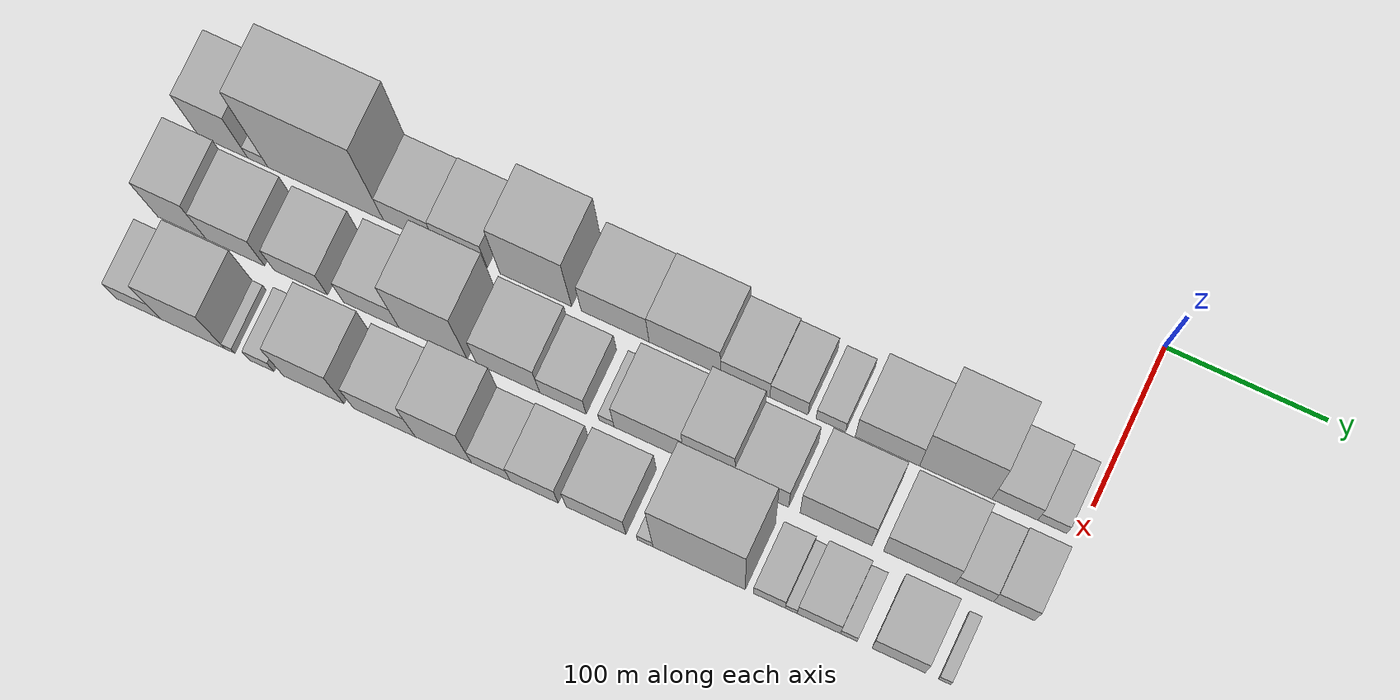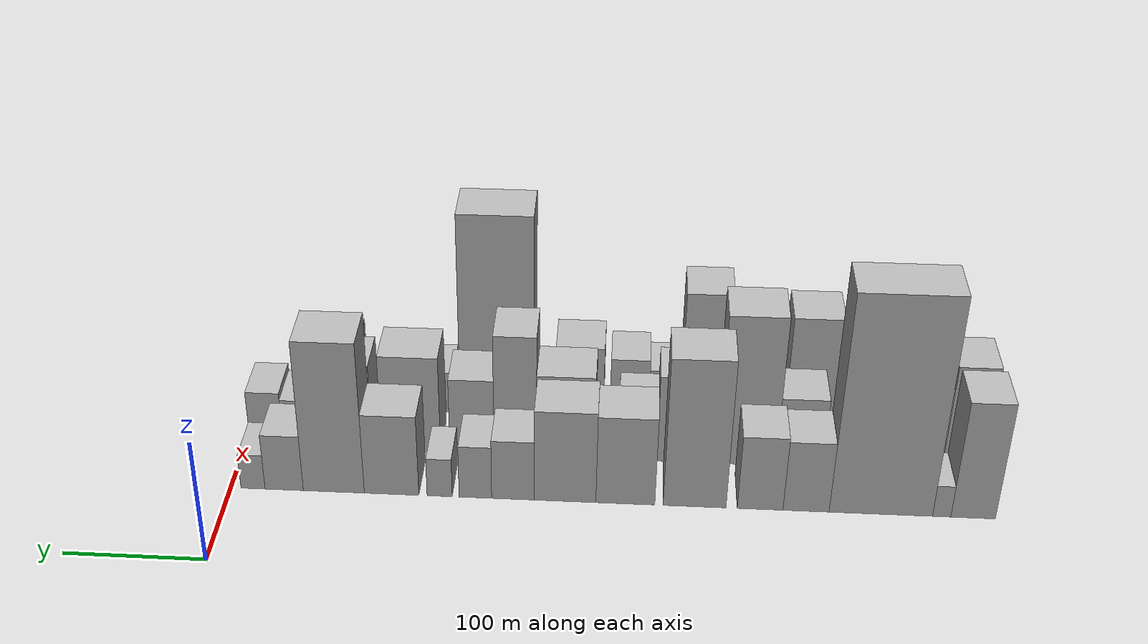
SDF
<sdf version="1.6">
 <world name="default">
  <model name="building_1">
   <static>1</static>
   <pose>100.0000 -532.3736 0 0.000000 0.000000 0.000000</pose>
   <link name="link">
    <pose>0 0 49.50 0 0 0</pose>
    <collision name="collision"><geometry><box><size>40.0000 31.2527 99.0000</size></box></geometry></collision>
    <visual name="visual">
     <cast_shadows>0</cast_shadows>
     <geometry><box><size>40.0000 31.2527 99.0000</size></box></geometry>
     <material>
      <script>
       <uri>model://HANNAS_wall/materials/scripts</uri>
       <uri>model://HANNAS_wall/materials/textures</uri>
       <name>vrc/HANNAS_wall</name>
      </script>
     </material>
    </visual>
   </link>
  </model>
  <model name="building_2">
   <static>1</static>
   <pose>100.0000 -510.3500 0 0.000000 0.000000 0.000000</pose>
   <link name="link">
    <pose>0 0 13.50 0 0 0</pose>
    <collision name="collision"><geometry><box><size>40.0000 12.7945 27.0000</size></box></geometry></collision>
    <visual name="visual">
     <cast_shadows>0</cast_shadows>
     <geometry><box><size>40.0000 12.7945 27.0000</size></box></geometry>
     <material>
      <script>
       <uri>model://HANNAS_wall/materials/scripts</uri>
       <uri>model://HANNAS_wall/materials/textures</uri>
       <name>vrc/HANNAS_wall</name>
      </script>
     </material>
    </visual>
   </link>
  </model>
  <model name="building_3">
   <static>1</static>
   <pose>100.0000 -467.4651 0 0.000000 0.000000 0.000000</pose>
   <link name="link">
    <pose>0 0 91.50 0 0 0</pose>
    <collision name="collision"><geometry><box><size>40.0000 72.9752 183.0000</size></box></geometry></collision>
    <visual name="visual">
     <cast_shadows>0</cast_shadows>
     <geometry><box><size>40.0000 72.9752 183.0000</size></box></geometry>
     <material>
      <script>
       <uri>model://HANNAS_wall/materials/scripts</uri>
       <uri>model://HANNAS_wall/materials/textures</uri>
       <name>vrc/HANNAS_wall</name>
      </script>
     </material>
    </visual>
   </link>
  </model>
  <model name="building_4">
   <static>1</static>
   <pose>100.0000 -414.6393 0 0.000000 0.000000 0.000000</pose>
   <link name="link">
    <pose>0 0 30.00 0 0 0</pose>
    <collision name="collision"><geometry><box><size>40.0000 32.6765 60.0000</size></box></geometry></collision>
    <visual name="visual">
     <cast_shadows>0</cast_shadows>
     <geometry><box><size>40.0000 32.6765 60.0000</size></box></geometry>
     <material>
      <script>
       <uri>model://HANNAS_wall/materials/scripts</uri>
       <uri>model://HANNAS_wall/materials/textures</uri>
       <name>vrc/HANNAS_wall</name>
      </script>
     </material>
    </visual>
   </link>
  </model>
  <model name="building_5">
   <static>1</static>
   <pose>100.0000 -382.0855 0 0.000000 0.000000 0.000000</pose>
   <link name="link">
    <pose>0 0 31.50 0 0 0</pose>
    <collision name="collision"><geometry><box><size>40.0000 32.4310 63.0000</size></box></geometry></collision>
    <visual name="visual">
     <cast_shadows>0</cast_shadows>
     <geometry><box><size>40.0000 32.4310 63.0000</size></box></geometry>
     <material>
      <script>
       <uri>model://HANNAS_wall/materials/scripts</uri>
       <uri>model://HANNAS_wall/materials/textures</uri>
       <name>vrc/HANNAS_wall</name>
      </script>
     </material>
    </visual>
   </link>
  </model>
  <model name="building_6">
   <static>1</static>
   <pose>100.0000 -335.4556 0 0.000000 0.000000 0.000000</pose>
   <link name="link">
    <pose>0 0 63.00 0 0 0</pose>
    <collision name="collision"><geometry><box><size>40.0000 44.8287 126.0000</size></box></geometry></collision>
    <visual name="visual">
     <cast_shadows>0</cast_shadows>
     <geometry><box><size>40.0000 44.8287 126.0000</size></box></geometry>
     <material>
      <script>
       <uri>model://HANNAS_wall/materials/scripts</uri>
       <uri>model://HANNAS_wall/materials/textures</uri>
       <name>vrc/HANNAS_wall</name>
      </script>
     </material>
    </visual>
   </link>
  </model>
  <model name="building_7">
   <static>1</static>
   <pose>100.0000 -285.9318 0 0.000000 0.000000 0.000000</pose>
   <link name="link">
    <pose>0 0 37.50 0 0 0</pose>
    <collision name="collision"><geometry><box><size>40.0000 42.2188 75.0000</size></box></geometry></collision>
    <visual name="visual">
     <cast_shadows>0</cast_shadows>
     <geometry><box><size>40.0000 42.2188 75.0000</size></box></geometry>
     <material>
      <script>
       <uri>model://HANNAS_wall/materials/scripts</uri>
       <uri>model://HANNAS_wall/materials/textures</uri>
       <name>vrc/HANNAS_wall</name>
      </script>
     </material>
    </visual>
   </link>
  </model>
  <model name="building_8">
   <static>1</static>
   <pose>100.0000 -242.5568 0 0.000000 0.000000 0.000000</pose>
   <link name="link">
    <pose>0 0 39.00 0 0 0</pose>
    <collision name="collision"><geometry><box><size>40.0000 44.5313 78.0000</size></box></geometry></collision>
    <visual name="visual">
     <cast_shadows>0</cast_shadows>
     <geometry><box><size>40.0000 44.5313 78.0000</size></box></geometry>
     <material>
      <script>
       <uri>model://HANNAS_wall/materials/scripts</uri>
       <uri>model://HANNAS_wall/materials/textures</uri>
       <name>vrc/HANNAS_wall</name>
      </script>
     </material>
    </visual>
   </link>
  </model>
  <model name="building_9">
   <static>1</static>
   <pose>100.0000 -205.0345 0 0.000000 0.000000 0.000000</pose>
   <link name="link">
    <pose>0 0 25.50 0 0 0</pose>
    <collision name="collision"><geometry><box><size>40.0000 30.5132 51.0000</size></box></geometry></collision>
    <visual name="visual">
     <cast_shadows>0</cast_shadows>
     <geometry><box><size>40.0000 30.5132 51.0000</size></box></geometry>
     <material>
      <script>
       <uri>model://HANNAS_wall/materials/scripts</uri>
       <uri>model://HANNAS_wall/materials/textures</uri>
       <name>vrc/HANNAS_wall</name>
      </script>
     </material>
    </visual>
   </link>
  </model>
  <model name="building_10">
   <static>1</static>
   <pose>100.0000 -178.0144 0 0.000000 0.000000 0.000000</pose>
   <link name="link">
    <pose>0 0 22.50 0 0 0</pose>
    <collision name="collision"><geometry><box><size>40.0000 23.5270 45.0000</size></box></geometry></collision>
    <visual name="visual">
     <cast_shadows>0</cast_shadows>
     <geometry><box><size>40.0000 23.5270 45.0000</size></box></geometry>
     <material>
      <script>
       <uri>model://HANNAS_wall/materials/scripts</uri>
       <uri>model://HANNAS_wall/materials/textures</uri>
       <name>vrc/HANNAS_wall</name>
      </script>
     </material>
    </visual>
   </link>
  </model>
  <model name="building_11">
   <static>1</static>
   <pose>100.0000 -152.1517 0 0.000000 0.000000 0.000000</pose>
   <link name="link">
    <pose>0 0 16.50 0 0 0</pose>
    <collision name="collision"><geometry><box><size>40.0000 18.1985 33.0000</size></box></geometry></collision>
    <visual name="visual">
     <cast_shadows>0</cast_shadows>
     <geometry><box><size>40.0000 18.1985 33.0000</size></box></geometry>
     <material>
      <script>
       <uri>model://HANNAS_wall/materials/scripts</uri>
       <uri>model://HANNAS_wall/materials/textures</uri>
       <name>vrc/HANNAS_wall</name>
      </script>
     </material>
    </visual>
   </link>
  </model>
  <model name="building_12">
   <static>1</static>
   <pose>100.0000 -117.2215 0 0.000000 0.000000 0.000000</pose>
   <link name="link">
    <pose>0 0 34.50 0 0 0</pose>
    <collision name="collision"><geometry><box><size>40.0000 39.6619 69.0000</size></box></geometry></collision>
    <visual name="visual">
     <cast_shadows>0</cast_shadows>
     <geometry><box><size>40.0000 39.6619 69.0000</size></box></geometry>
     <material>
      <script>
       <uri>model://HANNAS_wall/materials/scripts</uri>
       <uri>model://HANNAS_wall/materials/textures</uri>
       <name>vrc/HANNAS_wall</name>
      </script>
     </material>
    </visual>
   </link>
  </model>
  <model name="building_13">
   <static>1</static>
   <pose>100.0000 -75.1150 0 0.000000 0.000000 0.000000</pose>
   <link name="link">
    <pose>0 0 64.50 0 0 0</pose>
    <collision name="collision"><geometry><box><size>40.0000 44.5510 129.0000</size></box></geometry></collision>
    <visual name="visual">
     <cast_shadows>0</cast_shadows>
     <geometry><box><size>40.0000 44.5510 129.0000</size></box></geometry>
     <material>
      <script>
       <uri>model://HANNAS_wall/materials/scripts</uri>
       <uri>model://HANNAS_wall/materials/textures</uri>
       <name>vrc/HANNAS_wall</name>
      </script>
     </material>
    </visual>
   </link>
  </model>
  <model name="building_14">
   <static>1</static>
   <pose>100.0000 -38.8393 0 0.000000 0.000000 0.000000</pose>
   <link name="link">
    <pose>0 0 24.00 0 0 0</pose>
    <collision name="collision"><geometry><box><size>40.0000 28.0004 48.0000</size></box></geometry></collision>
    <visual name="visual">
     <cast_shadows>0</cast_shadows>
     <geometry><box><size>40.0000 28.0004 48.0000</size></box></geometry>
     <material>
      <script>
       <uri>model://HANNAS_wall/materials/scripts</uri>
       <uri>model://HANNAS_wall/materials/textures</uri>
       <name>vrc/HANNAS_wall</name>
      </script>
     </material>
    </visual>
   </link>
  </model>
  <model name="building_15">
   <static>1</static>
   <pose>100.0000 -16.0069 0 0.000000 0.000000 0.000000</pose>
   <link name="link">
    <pose>0 0 15.00 0 0 0</pose>
    <collision name="collision"><geometry><box><size>40.0000 17.6644 30.0000</size></box></geometry></collision>
    <visual name="visual">
     <cast_shadows>0</cast_shadows>
     <geometry><box><size>40.0000 17.6644 30.0000</size></box></geometry>
     <material>
      <script>
       <uri>model://HANNAS_wall/materials/scripts</uri>
       <uri>model://HANNAS_wall/materials/textures</uri>
       <name>vrc/HANNAS_wall</name>
      </script>
     </material>
    </visual>
   </link>
  </model>
  <model name="building_31">
   <static>1</static>
   <pose>152.0000 -532.7235 0 0.000000 0.000000 0.000000</pose>
   <link name="link">
    <pose>0 0 46.50 0 0 0</pose>
    <collision name="collision"><geometry><box><size>40.0000 30.5529 93.0000</size></box></geometry></collision>
    <visual name="visual">
     <cast_shadows>0</cast_shadows>
     <geometry><box><size>40.0000 30.5529 93.0000</size></box></geometry>
     <material>
      <script>
       <uri>model://HANNAS_wall/materials/scripts</uri>
       <uri>model://HANNAS_wall/materials/textures</uri>
       <name>vrc/HANNAS_wall</name>
      </script>
     </material>
    </visual>
   </link>
  </model>
  <model name="building_32">
   <static>1</static>
   <pose>152.0000 -499.0057 0 0.000000 0.000000 0.000000</pose>
   <link name="link">
    <pose>0 0 36.00 0 0 0</pose>
    <collision name="collision"><geometry><box><size>40.0000 36.8827 72.0000</size></box></geometry></collision>
    <visual name="visual">
     <cast_shadows>0</cast_shadows>
     <geometry><box><size>40.0000 36.8827 72.0000</size></box></geometry>
     <material>
      <script>
       <uri>model://HANNAS_wall/materials/scripts</uri>
       <uri>model://HANNAS_wall/materials/textures</uri>
       <name>vrc/HANNAS_wall</name>
      </script>
     </material>
    </visual>
   </link>
  </model>
  <model name="building_33">
   <static>1</static>
   <pose>152.0000 -457.7530 0 0.000000 0.000000 0.000000</pose>
   <link name="link">
    <pose>0 0 30.00 0 0 0</pose>
    <collision name="collision"><geometry><box><size>40.0000 33.6228 60.0000</size></box></geometry></collision>
    <visual name="visual">
     <cast_shadows>0</cast_shadows>
     <geometry><box><size>40.0000 33.6228 60.0000</size></box></geometry>
     <material>
      <script>
       <uri>model://HANNAS_wall/materials/scripts</uri>
       <uri>model://HANNAS_wall/materials/textures</uri>
       <name>vrc/HANNAS_wall</name>
      </script>
     </material>
    </visual>
   </link>
  </model>
  <model name="building_34">
   <static>1</static>
   <pose>152.0000 -413.5753 0 0.000000 0.000000 0.000000</pose>
   <link name="link">
    <pose>0 0 30.00 0 0 0</pose>
    <collision name="collision"><geometry><box><size>40.0000 34.7326 60.0000</size></box></geometry></collision>
    <visual name="visual">
     <cast_shadows>0</cast_shadows>
     <geometry><box><size>40.0000 34.7326 60.0000</size></box></geometry>
     <material>
      <script>
       <uri>model://HANNAS_wall/materials/scripts</uri>
       <uri>model://HANNAS_wall/materials/textures</uri>
       <name>vrc/HANNAS_wall</name>
      </script>
     </material>
    </visual>
   </link>
  </model>
  <model name="building_35">
   <static>1</static>
   <pose>152.0000 -374.9144 0 0.000000 0.000000 0.000000</pose>
   <link name="link">
    <pose>0 0 64.50 0 0 0</pose>
    <collision name="collision"><geometry><box><size>40.0000 42.5892 129.0000</size></box></geometry></collision>
    <visual name="visual">
     <cast_shadows>0</cast_shadows>
     <geometry><box><size>40.0000 42.5892 129.0000</size></box></geometry>
     <material>
      <script>
       <uri>model://HANNAS_wall/materials/scripts</uri>
       <uri>model://HANNAS_wall/materials/textures</uri>
       <name>vrc/HANNAS_wall</name>
      </script>
     </material>
    </visual>
   </link>
  </model>
  <model name="building_36">
   <static>1</static>
   <pose>152.0000 -327.9441 0 0.000000 0.000000 0.000000</pose>
   <link name="link">
    <pose>0 0 37.50 0 0 0</pose>
    <collision name="collision"><geometry><box><size>40.0000 39.3512 75.0000</size></box></geometry></collision>
    <visual name="visual">
     <cast_shadows>0</cast_shadows>
     <geometry><box><size>40.0000 39.3512 75.0000</size></box></geometry>
     <material>
      <script>
       <uri>model://HANNAS_wall/materials/scripts</uri>
       <uri>model://HANNAS_wall/materials/textures</uri>
       <name>vrc/HANNAS_wall</name>
      </script>
     </material>
    </visual>
   </link>
  </model>
  <model name="building_37">
   <static>1</static>
   <pose>152.0000 -293.8470 0 0.000000 0.000000 0.000000</pose>
   <link name="link">
    <pose>0 0 25.50 0 0 0</pose>
    <collision name="collision"><geometry><box><size>40.0000 28.8431 51.0000</size></box></geometry></collision>
    <visual name="visual">
     <cast_shadows>0</cast_shadows>
     <geometry><box><size>40.0000 28.8431 51.0000</size></box></geometry>
     <material>
      <script>
       <uri>model://HANNAS_wall/materials/scripts</uri>
       <uri>model://HANNAS_wall/materials/textures</uri>
       <name>vrc/HANNAS_wall</name>
      </script>
     </material>
    </visual>
   </link>
  </model>
  <model name="building_38">
   <static>1</static>
   <pose>152.0000 -266.7543 0 0.000000 0.000000 0.000000</pose>
   <link name="link">
    <pose>0 0 10.50 0 0 0</pose>
    <collision name="collision"><geometry><box><size>40.0000 9.3423 21.0000</size></box></geometry></collision>
    <visual name="visual">
     <cast_shadows>0</cast_shadows>
     <geometry><box><size>40.0000 9.3423 21.0000</size></box></geometry>
     <material>
      <script>
       <uri>model://HANNAS_wall/materials/scripts</uri>
       <uri>model://HANNAS_wall/materials/textures</uri>
       <name>vrc/HANNAS_wall</name>
      </script>
     </material>
    </visual>
   </link>
  </model>
  <model name="building_39">
   <static>1</static>
   <pose>152.0000 -240.4969 0 0.000000 0.000000 0.000000</pose>
   <link name="link">
    <pose>0 0 36.00 0 0 0</pose>
    <collision name="collision"><geometry><box><size>40.0000 43.1724 72.0000</size></box></geometry></collision>
    <visual name="visual">
     <cast_shadows>0</cast_shadows>
     <geometry><box><size>40.0000 43.1724 72.0000</size></box></geometry>
     <material>
      <script>
       <uri>model://HANNAS_wall/materials/scripts</uri>
       <uri>model://HANNAS_wall/materials/textures</uri>
       <name>vrc/HANNAS_wall</name>
      </script>
     </material>
    </visual>
   </link>
  </model>
  <model name="building_40">
   <static>1</static>
   <pose>152.0000 -203.0986 0 0.000000 0.000000 0.000000</pose>
   <link name="link">
    <pose>0 0 52.50 0 0 0</pose>
    <collision name="collision"><geometry><box><size>40.0000 31.6244 105.0000</size></box></geometry></collision>
    <visual name="visual">
     <cast_shadows>0</cast_shadows>
     <geometry><box><size>40.0000 31.6244 105.0000</size></box></geometry>
     <material>
      <script>
       <uri>model://HANNAS_wall/materials/scripts</uri>
       <uri>model://HANNAS_wall/materials/textures</uri>
       <name>vrc/HANNAS_wall</name>
      </script>
     </material>
    </visual>
   </link>
  </model>
  <model name="building_41">
   <static>1</static>
   <pose>152.0000 -170.7586 0 0.000000 0.000000 0.000000</pose>
   <link name="link">
    <pose>0 0 33.00 0 0 0</pose>
    <collision name="collision"><geometry><box><size>40.0000 33.0555 66.0000</size></box></geometry></collision>
    <visual name="visual">
     <cast_shadows>0</cast_shadows>
     <geometry><box><size>40.0000 33.0555 66.0000</size></box></geometry>
     <material>
      <script>
       <uri>model://HANNAS_wall/materials/scripts</uri>
       <uri>model://HANNAS_wall/materials/textures</uri>
       <name>vrc/HANNAS_wall</name>
      </script>
     </material>
    </visual>
   </link>
  </model>
  <model name="building_42">
   <static>1</static>
   <pose>152.0000 -125.1078 0 0.000000 0.000000 0.000000</pose>
   <link name="link">
    <pose>0 0 42.00 0 0 0</pose>
    <collision name="collision"><geometry><box><size>40.0000 44.2462 84.0000</size></box></geometry></collision>
    <visual name="visual">
     <cast_shadows>0</cast_shadows>
     <geometry><box><size>40.0000 44.2462 84.0000</size></box></geometry>
     <material>
      <script>
       <uri>model://HANNAS_wall/materials/scripts</uri>
       <uri>model://HANNAS_wall/materials/textures</uri>
       <name>vrc/HANNAS_wall</name>
      </script>
     </material>
    </visual>
   </link>
  </model>
  <model name="building_43">
   <static>1</static>
   <pose>152.0000 -73.9354 0 0.000000 0.000000 0.000000</pose>
   <link name="link">
    <pose>0 0 37.50 0 0 0</pose>
    <collision name="collision"><geometry><box><size>40.0000 44.0986 75.0000</size></box></geometry></collision>
    <visual name="visual">
     <cast_shadows>0</cast_shadows>
     <geometry><box><size>40.0000 44.0986 75.0000</size></box></geometry>
     <material>
      <script>
       <uri>model://HANNAS_wall/materials/scripts</uri>
       <uri>model://HANNAS_wall/materials/textures</uri>
       <name>vrc/HANNAS_wall</name>
      </script>
     </material>
    </visual>
   </link>
  </model>
  <model name="building_44">
   <static>1</static>
   <pose>152.0000 -40.2205 0 0.000000 0.000000 0.000000</pose>
   <link name="link">
    <pose>0 0 21.00 0 0 0</pose>
    <collision name="collision"><geometry><box><size>40.0000 23.3312 42.0000</size></box></geometry></collision>
    <visual name="visual">
     <cast_shadows>0</cast_shadows>
     <geometry><box><size>40.0000 23.3312 42.0000</size></box></geometry>
     <material>
      <script>
       <uri>model://HANNAS_wall/materials/scripts</uri>
       <uri>model://HANNAS_wall/materials/textures</uri>
       <name>vrc/HANNAS_wall</name>
      </script>
     </material>
    </visual>
   </link>
  </model>
  <model name="building_45">
   <static>1</static>
   <pose>152.0000 -16.0171 0 0.000000 0.000000 0.000000</pose>
   <link name="link">
    <pose>0 0 24.00 0 0 0</pose>
    <collision name="collision"><geometry><box><size>40.0000 25.0756 48.0000</size></box></geometry></collision>
    <visual name="visual">
     <cast_shadows>0</cast_shadows>
     <geometry><box><size>40.0000 25.0756 48.0000</size></box></geometry>
     <material>
      <script>
       <uri>model://HANNAS_wall/materials/scripts</uri>
       <uri>model://HANNAS_wall/materials/textures</uri>
       <name>vrc/HANNAS_wall</name>
      </script>
     </material>
    </visual>
   </link>
  </model>
  <model name="building_63">
   <static>1</static>
   <pose>204.0000 -534.0941 0 0.000000 0.000000 0.000000</pose>
   <link name="link">
    <pose>0 0 24.00 0 0 0</pose>
    <collision name="collision"><geometry><box><size>40.0000 27.8117 48.0000</size></box></geometry></collision>
    <visual name="visual">
     <cast_shadows>0</cast_shadows>
     <geometry><box><size>40.0000 27.8117 48.0000</size></box></geometry>
     <material>
      <script>
       <uri>model://HANNAS_wall/materials/scripts</uri>
       <uri>model://HANNAS_wall/materials/textures</uri>
       <name>vrc/HANNAS_wall</name>
      </script>
     </material>
    </visual>
   </link>
  </model>
  <model name="building_64">
   <static>1</static>
   <pose>204.0000 -500.2130 0 0.000000 0.000000 0.000000</pose>
   <link name="link">
    <pose>0 0 52.50 0 0 0</pose>
    <collision name="collision"><geometry><box><size>40.0000 39.9505 105.0000</size></box></geometry></collision>
    <visual name="visual">
     <cast_shadows>0</cast_shadows>
     <geometry><box><size>40.0000 39.9505 105.0000</size></box></geometry>
     <material>
      <script>
       <uri>model://HANNAS_wall/materials/scripts</uri>
       <uri>model://HANNAS_wall/materials/textures</uri>
       <name>vrc/HANNAS_wall</name>
      </script>
     </material>
    </visual>
   </link>
  </model>
  <model name="building_65">
   <static>1</static>
   <pose>204.0000 -477.0245 0 0.000000 0.000000 0.000000</pose>
   <link name="link">
    <pose>0 0 7.50 0 0 0</pose>
    <collision name="collision"><geometry><box><size>40.0000 6.4266 15.0000</size></box></geometry></collision>
    <visual name="visual">
     <cast_shadows>0</cast_shadows>
     <geometry><box><size>40.0000 6.4266 15.0000</size></box></geometry>
     <material>
      <script>
       <uri>model://HANNAS_wall/materials/scripts</uri>
       <uri>model://HANNAS_wall/materials/textures</uri>
       <name>vrc/HANNAS_wall</name>
      </script>
     </material>
    </visual>
   </link>
  </model>
  <model name="building_66">
   <static>1</static>
   <pose>204.0000 -457.0203 0 0.000000 0.000000 0.000000</pose>
   <link name="link">
    <pose>0 0 15.00 0 0 0</pose>
    <collision name="collision"><geometry><box><size>40.0000 15.5818 30.0000</size></box></geometry></collision>
    <visual name="visual">
     <cast_shadows>0</cast_shadows>
     <geometry><box><size>40.0000 15.5818 30.0000</size></box></geometry>
     <material>
      <script>
       <uri>model://HANNAS_wall/materials/scripts</uri>
       <uri>model://HANNAS_wall/materials/textures</uri>
       <name>vrc/HANNAS_wall</name>
      </script>
     </material>
    </visual>
   </link>
  </model>
  <model name="building_67">
   <static>1</static>
   <pose>204.0000 -424.3223 0 0.000000 0.000000 0.000000</pose>
   <link name="link">
    <pose>0 0 48.00 0 0 0</pose>
    <collision name="collision"><geometry><box><size>40.0000 37.8143 96.0000</size></box></geometry></collision>
    <visual name="visual">
     <cast_shadows>0</cast_shadows>
     <geometry><box><size>40.0000 37.8143 96.0000</size></box></geometry>
     <material>
      <script>
       <uri>model://HANNAS_wall/materials/scripts</uri>
       <uri>model://HANNAS_wall/materials/textures</uri>
       <name>vrc/HANNAS_wall</name>
      </script>
     </material>
    </visual>
   </link>
  </model>
  <model name="building_68">
   <static>1</static>
   <pose>204.0000 -380.1572 0 0.000000 0.000000 0.000000</pose>
   <link name="link">
    <pose>0 0 36.00 0 0 0</pose>
    <collision name="collision"><geometry><box><size>40.0000 38.5158 72.0000</size></box></geometry></collision>
    <visual name="visual">
     <cast_shadows>0</cast_shadows>
     <geometry><box><size>40.0000 38.5158 72.0000</size></box></geometry>
     <material>
      <script>
       <uri>model://HANNAS_wall/materials/scripts</uri>
       <uri>model://HANNAS_wall/materials/textures</uri>
       <name>vrc/HANNAS_wall</name>
      </script>
     </material>
    </visual>
   </link>
  </model>
  <model name="building_69">
   <static>1</static>
   <pose>204.0000 -343.4152 0 0.000000 0.000000 0.000000</pose>
   <link name="link">
    <pose>0 0 57.00 0 0 0</pose>
    <collision name="collision"><geometry><box><size>40.0000 34.9683 114.0000</size></box></geometry></collision>
    <visual name="visual">
     <cast_shadows>0</cast_shadows>
     <geometry><box><size>40.0000 34.9683 114.0000</size></box></geometry>
     <material>
      <script>
       <uri>model://HANNAS_wall/materials/scripts</uri>
       <uri>model://HANNAS_wall/materials/textures</uri>
       <name>vrc/HANNAS_wall</name>
      </script>
     </material>
    </visual>
   </link>
  </model>
  <model name="building_70">
   <static>1</static>
   <pose>204.0000 -313.9089 0 0.000000 0.000000 0.000000</pose>
   <link name="link">
    <pose>0 0 22.50 0 0 0</pose>
    <collision name="collision"><geometry><box><size>40.0000 24.0444 45.0000</size></box></geometry></collision>
    <visual name="visual">
     <cast_shadows>0</cast_shadows>
     <geometry><box><size>40.0000 24.0444 45.0000</size></box></geometry>
     <material>
      <script>
       <uri>model://HANNAS_wall/materials/scripts</uri>
       <uri>model://HANNAS_wall/materials/textures</uri>
       <name>vrc/HANNAS_wall</name>
      </script>
     </material>
    </visual>
   </link>
  </model>
  <model name="building_71">
   <static>1</static>
   <pose>204.0000 -287.0446 0 0.000000 0.000000 0.000000</pose>
   <link name="link">
    <pose>0 0 27.00 0 0 0</pose>
    <collision name="collision"><geometry><box><size>40.0000 29.6842 54.0000</size></box></geometry></collision>
    <visual name="visual">
     <cast_shadows>0</cast_shadows>
     <geometry><box><size>40.0000 29.6842 54.0000</size></box></geometry>
     <material>
      <script>
       <uri>model://HANNAS_wall/materials/scripts</uri>
       <uri>model://HANNAS_wall/materials/textures</uri>
       <name>vrc/HANNAS_wall</name>
      </script>
     </material>
    </visual>
   </link>
  </model>
  <model name="building_72">
   <static>1</static>
   <pose>204.0000 -248.7895 0 0.000000 0.000000 0.000000</pose>
   <link name="link">
    <pose>0 0 31.50 0 0 0</pose>
    <collision name="collision"><geometry><box><size>40.0000 36.8259 63.0000</size></box></geometry></collision>
    <visual name="visual">
     <cast_shadows>0</cast_shadows>
     <geometry><box><size>40.0000 36.8259 63.0000</size></box></geometry>
     <material>
      <script>
       <uri>model://HANNAS_wall/materials/scripts</uri>
       <uri>model://HANNAS_wall/materials/textures</uri>
       <name>vrc/HANNAS_wall</name>
      </script>
     </material>
    </visual>
   </link>
  </model>
  <model name="building_73">
   <static>1</static>
   <pose>204.0000 -218.5208 0 0.000000 0.000000 0.000000</pose>
   <link name="link">
    <pose>0 0 10.50 0 0 0</pose>
    <collision name="collision"><geometry><box><size>40.0000 9.7114 21.0000</size></box></geometry></collision>
    <visual name="visual">
     <cast_shadows>0</cast_shadows>
     <geometry><box><size>40.0000 9.7114 21.0000</size></box></geometry>
     <material>
      <script>
       <uri>model://HANNAS_wall/materials/scripts</uri>
       <uri>model://HANNAS_wall/materials/textures</uri>
       <name>vrc/HANNAS_wall</name>
      </script>
     </material>
    </visual>
   </link>
  </model>
  <model name="building_74">
   <static>1</static>
   <pose>204.0000 -185.2857 0 0.000000 0.000000 0.000000</pose>
   <link name="link">
    <pose>0 0 87.00 0 0 0</pose>
    <collision name="collision"><geometry><box><size>40.0000 56.7588 174.0000</size></box></geometry></collision>
    <visual name="visual">
     <cast_shadows>0</cast_shadows>
     <geometry><box><size>40.0000 56.7588 174.0000</size></box></geometry>
     <material>
      <script>
       <uri>model://HANNAS_wall/materials/scripts</uri>
       <uri>model://HANNAS_wall/materials/textures</uri>
       <name>vrc/HANNAS_wall</name>
      </script>
     </material>
    </visual>
   </link>
  </model>
  <model name="building_75">
   <static>1</static>
   <pose>204.0000 -142.1535 0 0.000000 0.000000 0.000000</pose>
   <link name="link">
    <pose>0 0 18.00 0 0 0</pose>
    <collision name="collision"><geometry><box><size>40.0000 19.5057 36.0000</size></box></geometry></collision>
    <visual name="visual">
     <cast_shadows>0</cast_shadows>
     <geometry><box><size>40.0000 19.5057 36.0000</size></box></geometry>
     <material>
      <script>
       <uri>model://HANNAS_wall/materials/scripts</uri>
       <uri>model://HANNAS_wall/materials/textures</uri>
       <name>vrc/HANNAS_wall</name>
      </script>
     </material>
    </visual>
   </link>
  </model>
  <model name="building_76">
   <static>1</static>
   <pose>204.0000 -128.6731 0 0.000000 0.000000 0.000000</pose>
   <link name="link">
    <pose>0 0 9.00 0 0 0</pose>
    <collision name="collision"><geometry><box><size>40.0000 7.4551 18.0000</size></box></geometry></collision>
    <visual name="visual">
     <cast_shadows>0</cast_shadows>
     <geometry><box><size>40.0000 7.4551 18.0000</size></box></geometry>
     <material>
      <script>
       <uri>model://HANNAS_wall/materials/scripts</uri>
       <uri>model://HANNAS_wall/materials/textures</uri>
       <name>vrc/HANNAS_wall</name>
      </script>
     </material>
    </visual>
   </link>
  </model>
  <model name="building_77">
   <static>1</static>
   <pose>204.0000 -111.7800 0 0.000000 0.000000 0.000000</pose>
   <link name="link">
    <pose>0 0 22.50 0 0 0</pose>
    <collision name="collision"><geometry><box><size>40.0000 26.3310 45.0000</size></box></geometry></collision>
    <visual name="visual">
     <cast_shadows>0</cast_shadows>
     <geometry><box><size>40.0000 26.3310 45.0000</size></box></geometry>
     <material>
      <script>
       <uri>model://HANNAS_wall/materials/scripts</uri>
       <uri>model://HANNAS_wall/materials/textures</uri>
       <name>vrc/HANNAS_wall</name>
      </script>
     </material>
    </visual>
   </link>
  </model>
  <model name="building_78">
   <static>1</static>
   <pose>204.0000 -93.4855 0 0.000000 0.000000 0.000000</pose>
   <link name="link">
    <pose>0 0 10.50 0 0 0</pose>
    <collision name="collision"><geometry><box><size>40.0000 10.2582 21.0000</size></box></geometry></collision>
    <visual name="visual">
     <cast_shadows>0</cast_shadows>
     <geometry><box><size>40.0000 10.2582 21.0000</size></box></geometry>
     <material>
      <script>
       <uri>model://HANNAS_wall/materials/scripts</uri>
       <uri>model://HANNAS_wall/materials/textures</uri>
       <name>vrc/HANNAS_wall</name>
      </script>
     </material>
    </visual>
   </link>
  </model>
  <model name="building_79">
   <static>1</static>
   <pose>204.0000 -63.0453 0 0.000000 0.000000 0.000000</pose>
   <link name="link">
    <pose>0 0 28.50 0 0 0</pose>
    <collision name="collision"><geometry><box><size>40.0000 32.6221 57.0000</size></box></geometry></collision>
    <visual name="visual">
     <cast_shadows>0</cast_shadows>
     <geometry><box><size>40.0000 32.6221 57.0000</size></box></geometry>
     <material>
      <script>
       <uri>model://HANNAS_wall/materials/scripts</uri>
       <uri>model://HANNAS_wall/materials/textures</uri>
       <name>vrc/HANNAS_wall</name>
      </script>
     </material>
    </visual>
   </link>
  </model>
  <model name="building_80">
   <static>1</static>
   <pose>204.0000 -35.0047 0 0.000000 0.000000 0.000000</pose>
   <link name="link">
    <pose>0 0 9.00 0 0 0</pose>
    <collision name="collision"><geometry><box><size>40.0000 7.4592 18.0000</size></box></geometry></collision>
    <visual name="visual">
     <cast_shadows>0</cast_shadows>
     <geometry><box><size>40.0000 7.4592 18.0000</size></box></geometry>
     <material>
      <script>
       <uri>model://HANNAS_wall/materials/scripts</uri>
       <uri>model://HANNAS_wall/materials/textures</uri>
       <name>vrc/HANNAS_wall</name>
      </script>
     </material>
    </visual>
   </link>
  </model>
 </world>
</sdf>
